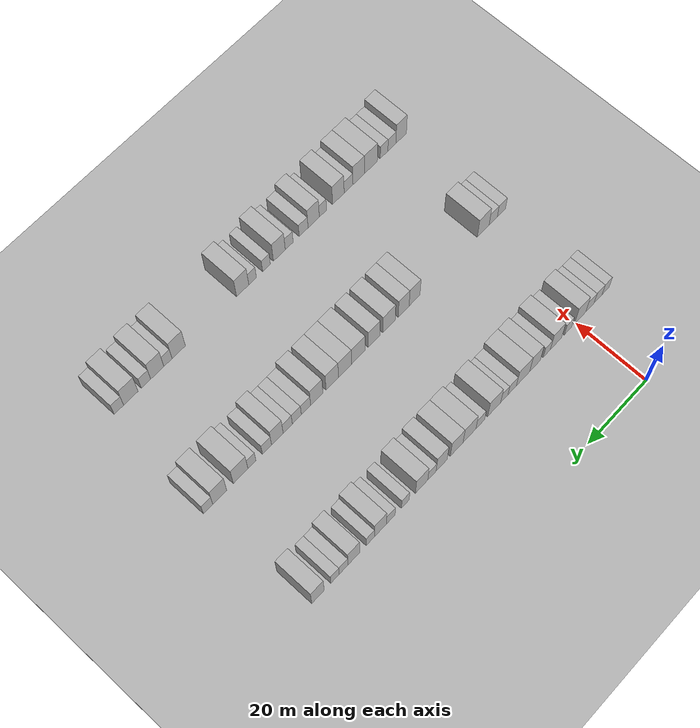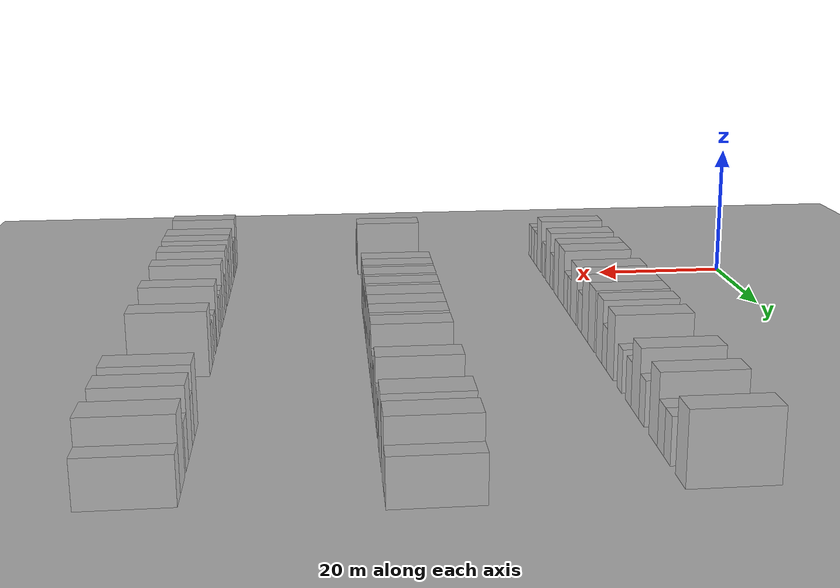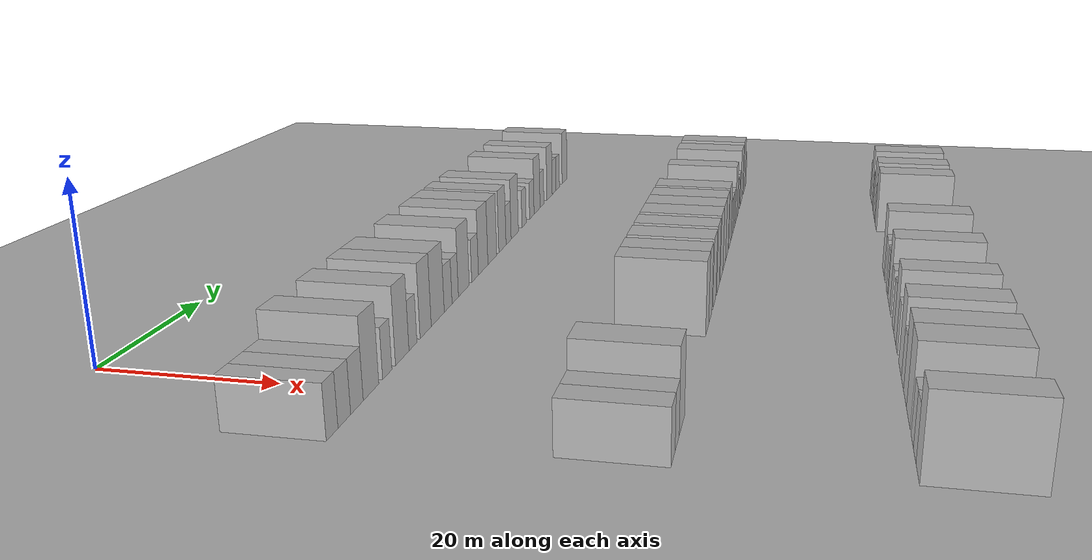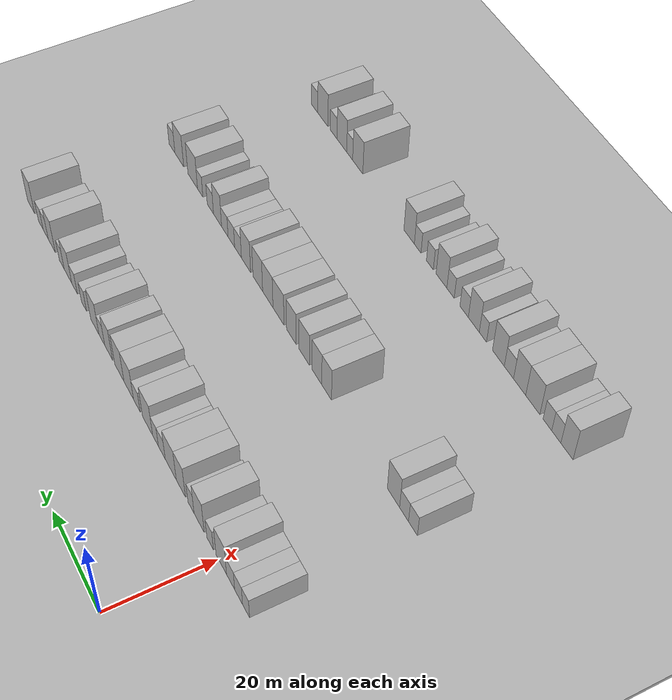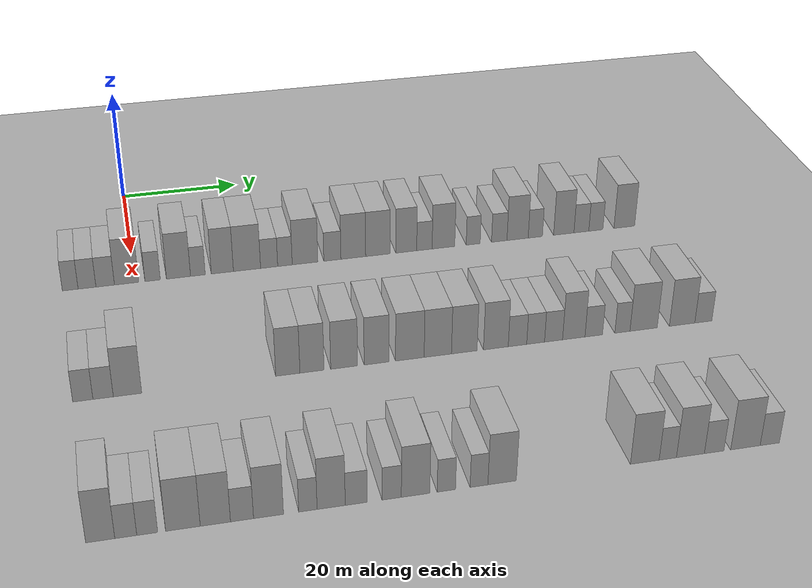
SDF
<sdf version="1.6">
 <world name="default">
  <include><name>ground_plane_1</name><uri>model://HANNAS_ground_plane</uri></include>
  <include>
   <name>ground_plane_2</name>
   <uri>model://HANNAS_ground_plane</uri>
   <pose>100 0 0  0 0 0</pose>
  </include>
  <model name="building_67">
   <static>1</static>
   <pose>25.0000 -10.3024 0 0.000000 0.000000 0.000000</pose>
   <link name="link">
    <pose>0 0 3.00 0 0 0</pose>
    <collision name="collision"><geometry><box><size>10.0000 2.5025 6.0000</size></box></geometry></collision>
    <visual name="visual">
     <cast_shadows>0</cast_shadows>
     <geometry><box><size>10.0000 2.5025 6.0000</size></box></geometry>
     <material>
      <script>
       <uri>model://HANNAS_wall/materials/scripts</uri>
       <uri>model://HANNAS_wall/materials/textures</uri>
       <name>vrc/HANNAS_wall</name>
      </script>
     </material>
    </visual>
   </link>
  </model>
  <model name="building_68">
   <static>1</static>
   <pose>25.0000 -7.6324 0 0.000000 0.000000 0.000000</pose>
   <link name="link">
    <pose>0 0 3.00 0 0 0</pose>
    <collision name="collision"><geometry><box><size>10.0000 2.8376 6.0000</size></box></geometry></collision>
    <visual name="visual">
     <cast_shadows>0</cast_shadows>
     <geometry><box><size>10.0000 2.8376 6.0000</size></box></geometry>
     <material>
      <script>
       <uri>model://HANNAS_wall/materials/scripts</uri>
       <uri>model://HANNAS_wall/materials/textures</uri>
       <name>vrc/HANNAS_wall</name>
      </script>
     </material>
    </visual>
   </link>
  </model>
  <model name="building_69">
   <static>1</static>
   <pose>25.0000 -4.7321 0 0.000000 0.000000 0.000000</pose>
   <link name="link">
    <pose>0 0 3.00 0 0 0</pose>
    <collision name="collision"><geometry><box><size>10.0000 2.9629 6.0000</size></box></geometry></collision>
    <visual name="visual">
     <cast_shadows>0</cast_shadows>
     <geometry><box><size>10.0000 2.9629 6.0000</size></box></geometry>
     <material>
      <script>
       <uri>model://HANNAS_wall/materials/scripts</uri>
       <uri>model://HANNAS_wall/materials/textures</uri>
       <name>vrc/HANNAS_wall</name>
      </script>
     </material>
    </visual>
   </link>
  </model>
  <model name="building_70">
   <static>1</static>
   <pose>25.0000 -1.3018 0 0.000000 0.000000 0.000000</pose>
   <link name="link">
    <pose>0 0 4.50 0 0 0</pose>
    <collision name="collision"><geometry><box><size>10.0000 3.8976 9.0000</size></box></geometry></collision>
    <visual name="visual">
     <cast_shadows>0</cast_shadows>
     <geometry><box><size>10.0000 3.8976 9.0000</size></box></geometry>
     <material>
      <script>
       <uri>model://HANNAS_wall/materials/scripts</uri>
       <uri>model://HANNAS_wall/materials/textures</uri>
       <name>vrc/HANNAS_wall</name>
      </script>
     </material>
    </visual>
   </link>
  </model>
  <model name="building_71">
   <static>1</static>
   <pose>25.0000 2.8912 0 0.000000 0.000000 0.000000</pose>
   <link name="link">
    <pose>0 0 3.00 0 0 0</pose>
    <collision name="collision"><geometry><box><size>10.0000 2.4885 6.0000</size></box></geometry></collision>
    <visual name="visual">
     <cast_shadows>0</cast_shadows>
     <geometry><box><size>10.0000 2.4885 6.0000</size></box></geometry>
     <material>
      <script>
       <uri>model://HANNAS_wall/materials/scripts</uri>
       <uri>model://HANNAS_wall/materials/textures</uri>
       <name>vrc/HANNAS_wall</name>
      </script>
     </material>
    </visual>
   </link>
  </model>
  <model name="building_72">
   <static>1</static>
   <pose>25.0000 7.0925 0 0.000000 0.000000 0.000000</pose>
   <link name="link">
    <pose>0 0 4.50 0 0 0</pose>
    <collision name="collision"><geometry><box><size>10.0000 3.9141 9.0000</size></box></geometry></collision>
    <visual name="visual">
     <cast_shadows>0</cast_shadows>
     <geometry><box><size>10.0000 3.9141 9.0000</size></box></geometry>
     <material>
      <script>
       <uri>model://HANNAS_wall/materials/scripts</uri>
       <uri>model://HANNAS_wall/materials/textures</uri>
       <name>vrc/HANNAS_wall</name>
      </script>
     </material>
    </visual>
   </link>
  </model>
  <model name="building_73">
   <static>1</static>
   <pose>25.0000 10.2542 0 0.000000 0.000000 0.000000</pose>
   <link name="link">
    <pose>0 0 3.00 0 0 0</pose>
    <collision name="collision"><geometry><box><size>10.0000 2.4094 6.0000</size></box></geometry></collision>
    <visual name="visual">
     <cast_shadows>0</cast_shadows>
     <geometry><box><size>10.0000 2.4094 6.0000</size></box></geometry>
     <material>
      <script>
       <uri>model://HANNAS_wall/materials/scripts</uri>
       <uri>model://HANNAS_wall/materials/textures</uri>
       <name>vrc/HANNAS_wall</name>
      </script>
     </material>
    </visual>
   </link>
  </model>
  <model name="building_74">
   <static>1</static>
   <pose>25.0000 14.2739 0 0.000000 0.000000 0.000000</pose>
   <link name="link">
    <pose>0 0 4.50 0 0 0</pose>
    <collision name="collision"><geometry><box><size>10.0000 3.6300 9.0000</size></box></geometry></collision>
    <visual name="visual">
     <cast_shadows>0</cast_shadows>
     <geometry><box><size>10.0000 3.6300 9.0000</size></box></geometry>
     <material>
      <script>
       <uri>model://HANNAS_wall/materials/scripts</uri>
       <uri>model://HANNAS_wall/materials/textures</uri>
       <name>vrc/HANNAS_wall</name>
      </script>
     </material>
    </visual>
   </link>
  </model>
  <model name="building_75">
   <static>1</static>
   <pose>25.0000 18.3363 0 0.000000 0.000000 0.000000</pose>
   <link name="link">
    <pose>0 0 4.50 0 0 0</pose>
    <collision name="collision"><geometry><box><size>10.0000 4.4947 9.0000</size></box></geometry></collision>
    <visual name="visual">
     <cast_shadows>0</cast_shadows>
     <geometry><box><size>10.0000 4.4947 9.0000</size></box></geometry>
     <material>
      <script>
       <uri>model://HANNAS_wall/materials/scripts</uri>
       <uri>model://HANNAS_wall/materials/textures</uri>
       <name>vrc/HANNAS_wall</name>
      </script>
     </material>
    </visual>
   </link>
  </model>
  <model name="building_76">
   <static>1</static>
   <pose>25.0000 22.0065 0 0.000000 0.000000 0.000000</pose>
   <link name="link">
    <pose>0 0 3.00 0 0 0</pose>
    <collision name="collision"><geometry><box><size>10.0000 2.8459 6.0000</size></box></geometry></collision>
    <visual name="visual">
     <cast_shadows>0</cast_shadows>
     <geometry><box><size>10.0000 2.8459 6.0000</size></box></geometry>
     <material>
      <script>
       <uri>model://HANNAS_wall/materials/scripts</uri>
       <uri>model://HANNAS_wall/materials/textures</uri>
       <name>vrc/HANNAS_wall</name>
      </script>
     </material>
    </visual>
   </link>
  </model>
  <model name="building_77">
   <static>1</static>
   <pose>25.0000 24.6432 0 0.000000 0.000000 0.000000</pose>
   <link name="link">
    <pose>0 0 3.00 0 0 0</pose>
    <collision name="collision"><geometry><box><size>10.0000 2.4274 6.0000</size></box></geometry></collision>
    <visual name="visual">
     <cast_shadows>0</cast_shadows>
     <geometry><box><size>10.0000 2.4274 6.0000</size></box></geometry>
     <material>
      <script>
       <uri>model://HANNAS_wall/materials/scripts</uri>
       <uri>model://HANNAS_wall/materials/textures</uri>
       <name>vrc/HANNAS_wall</name>
      </script>
     </material>
    </visual>
   </link>
  </model>
  <model name="building_78">
   <static>1</static>
   <pose>25.0000 28.0102 0 0.000000 0.000000 0.000000</pose>
   <link name="link">
    <pose>0 0 4.50 0 0 0</pose>
    <collision name="collision"><geometry><box><size>10.0000 4.3068 9.0000</size></box></geometry></collision>
    <visual name="visual">
     <cast_shadows>0</cast_shadows>
     <geometry><box><size>10.0000 4.3068 9.0000</size></box></geometry>
     <material>
      <script>
       <uri>model://HANNAS_wall/materials/scripts</uri>
       <uri>model://HANNAS_wall/materials/textures</uri>
       <name>vrc/HANNAS_wall</name>
      </script>
     </material>
    </visual>
   </link>
  </model>
  <model name="building_79">
   <static>1</static>
   <pose>25.0000 32.6095 0 0.000000 0.000000 0.000000</pose>
   <link name="link">
    <pose>0 0 3.00 0 0 0</pose>
    <collision name="collision"><geometry><box><size>10.0000 2.8917 6.0000</size></box></geometry></collision>
    <visual name="visual">
     <cast_shadows>0</cast_shadows>
     <geometry><box><size>10.0000 2.8917 6.0000</size></box></geometry>
     <material>
      <script>
       <uri>model://HANNAS_wall/materials/scripts</uri>
       <uri>model://HANNAS_wall/materials/textures</uri>
       <name>vrc/HANNAS_wall</name>
      </script>
     </material>
    </visual>
   </link>
  </model>
  <model name="building_80">
   <static>1</static>
   <pose>25.0000 36.1587 0 0.000000 0.000000 0.000000</pose>
   <link name="link">
    <pose>0 0 4.50 0 0 0</pose>
    <collision name="collision"><geometry><box><size>10.0000 4.2068 9.0000</size></box></geometry></collision>
    <visual name="visual">
     <cast_shadows>0</cast_shadows>
     <geometry><box><size>10.0000 4.2068 9.0000</size></box></geometry>
     <material>
      <script>
       <uri>model://HANNAS_wall/materials/scripts</uri>
       <uri>model://HANNAS_wall/materials/textures</uri>
       <name>vrc/HANNAS_wall</name>
      </script>
     </material>
    </visual>
   </link>
  </model>
  <model name="building_81">
   <static>1</static>
   <pose>25.0000 40.3358 0 0.000000 0.000000 0.000000</pose>
   <link name="link">
    <pose>0 0 4.50 0 0 0</pose>
    <collision name="collision"><geometry><box><size>10.0000 4.1473 9.0000</size></box></geometry></collision>
    <visual name="visual">
     <cast_shadows>0</cast_shadows>
     <geometry><box><size>10.0000 4.1473 9.0000</size></box></geometry>
     <material>
      <script>
       <uri>model://HANNAS_wall/materials/scripts</uri>
       <uri>model://HANNAS_wall/materials/textures</uri>
       <name>vrc/HANNAS_wall</name>
      </script>
     </material>
    </visual>
   </link>
  </model>
  <model name="building_82">
   <static>1</static>
   <pose>25.0000 45.2142 0 0.000000 0.000000 0.000000</pose>
   <link name="link">
    <pose>0 0 4.50 0 0 0</pose>
    <collision name="collision"><geometry><box><size>10.0000 3.6094 9.0000</size></box></geometry></collision>
    <visual name="visual">
     <cast_shadows>0</cast_shadows>
     <geometry><box><size>10.0000 3.6094 9.0000</size></box></geometry>
     <material>
      <script>
       <uri>model://HANNAS_wall/materials/scripts</uri>
       <uri>model://HANNAS_wall/materials/textures</uri>
       <name>vrc/HANNAS_wall</name>
      </script>
     </material>
    </visual>
   </link>
  </model>
  <model name="building_83">
   <static>1</static>
   <pose>25.0000 48.3505 0 0.000000 0.000000 0.000000</pose>
   <link name="link">
    <pose>0 0 3.00 0 0 0</pose>
    <collision name="collision"><geometry><box><size>10.0000 2.6633 6.0000</size></box></geometry></collision>
    <visual name="visual">
     <cast_shadows>0</cast_shadows>
     <geometry><box><size>10.0000 2.6633 6.0000</size></box></geometry>
     <material>
      <script>
       <uri>model://HANNAS_wall/materials/scripts</uri>
       <uri>model://HANNAS_wall/materials/textures</uri>
       <name>vrc/HANNAS_wall</name>
      </script>
     </material>
    </visual>
   </link>
  </model>
  <model name="building_84">
   <static>1</static>
   <pose>25.0000 51.6442 0 0.000000 0.000000 0.000000</pose>
   <link name="link">
    <pose>0 0 4.50 0 0 0</pose>
    <collision name="collision"><geometry><box><size>10.0000 3.9240 9.0000</size></box></geometry></collision>
    <visual name="visual">
     <cast_shadows>0</cast_shadows>
     <geometry><box><size>10.0000 3.9240 9.0000</size></box></geometry>
     <material>
      <script>
       <uri>model://HANNAS_wall/materials/scripts</uri>
       <uri>model://HANNAS_wall/materials/textures</uri>
       <name>vrc/HANNAS_wall</name>
      </script>
     </material>
    </visual>
   </link>
  </model>
  <model name="building_85">
   <static>1</static>
   <pose>25.0000 56.8289 0 0.000000 0.000000 0.000000</pose>
   <link name="link">
    <pose>0 0 3.00 0 0 0</pose>
    <collision name="collision"><geometry><box><size>10.0000 2.4454 6.0000</size></box></geometry></collision>
    <visual name="visual">
     <cast_shadows>0</cast_shadows>
     <geometry><box><size>10.0000 2.4454 6.0000</size></box></geometry>
     <material>
      <script>
       <uri>model://HANNAS_wall/materials/scripts</uri>
       <uri>model://HANNAS_wall/materials/textures</uri>
       <name>vrc/HANNAS_wall</name>
      </script>
     </material>
    </visual>
   </link>
  </model>
  <model name="building_86">
   <static>1</static>
   <pose>25.0000 61.4124 0 0.000000 0.000000 0.000000</pose>
   <link name="link">
    <pose>0 0 3.00 0 0 0</pose>
    <collision name="collision"><geometry><box><size>10.0000 2.7215 6.0000</size></box></geometry></collision>
    <visual name="visual">
     <cast_shadows>0</cast_shadows>
     <geometry><box><size>10.0000 2.7215 6.0000</size></box></geometry>
     <material>
      <script>
       <uri>model://HANNAS_wall/materials/scripts</uri>
       <uri>model://HANNAS_wall/materials/textures</uri>
       <name>vrc/HANNAS_wall</name>
      </script>
     </material>
    </visual>
   </link>
  </model>
  <model name="building_87">
   <static>1</static>
   <pose>25.0000 64.6516 0 0.000000 0.000000 0.000000</pose>
   <link name="link">
    <pose>0 0 4.50 0 0 0</pose>
    <collision name="collision"><geometry><box><size>10.0000 3.7570 9.0000</size></box></geometry></collision>
    <visual name="visual">
     <cast_shadows>0</cast_shadows>
     <geometry><box><size>10.0000 3.7570 9.0000</size></box></geometry>
     <material>
      <script>
       <uri>model://HANNAS_wall/materials/scripts</uri>
       <uri>model://HANNAS_wall/materials/textures</uri>
       <name>vrc/HANNAS_wall</name>
      </script>
     </material>
    </visual>
   </link>
  </model>
  <model name="building_88">
   <static>1</static>
   <pose>25.0000 67.7950 0 0.000000 0.000000 0.000000</pose>
   <link name="link">
    <pose>0 0 3.00 0 0 0</pose>
    <collision name="collision"><geometry><box><size>10.0000 2.5297 6.0000</size></box></geometry></collision>
    <visual name="visual">
     <cast_shadows>0</cast_shadows>
     <geometry><box><size>10.0000 2.5297 6.0000</size></box></geometry>
     <material>
      <script>
       <uri>model://HANNAS_wall/materials/scripts</uri>
       <uri>model://HANNAS_wall/materials/textures</uri>
       <name>vrc/HANNAS_wall</name>
      </script>
     </material>
    </visual>
   </link>
  </model>
  <model name="building_89">
   <static>1</static>
   <pose>25.0000 72.8808 0 0.000000 0.000000 0.000000</pose>
   <link name="link">
    <pose>0 0 4.50 0 0 0</pose>
    <collision name="collision"><geometry><box><size>10.0000 3.6419 9.0000</size></box></geometry></collision>
    <visual name="visual">
     <cast_shadows>0</cast_shadows>
     <geometry><box><size>10.0000 3.6419 9.0000</size></box></geometry>
     <material>
      <script>
       <uri>model://HANNAS_wall/materials/scripts</uri>
       <uri>model://HANNAS_wall/materials/textures</uri>
       <name>vrc/HANNAS_wall</name>
      </script>
     </material>
    </visual>
   </link>
  </model>
  <model name="building_90">
   <static>1</static>
   <pose>25.0000 76.0412 0 0.000000 0.000000 0.000000</pose>
   <link name="link">
    <pose>0 0 3.00 0 0 0</pose>
    <collision name="collision"><geometry><box><size>10.0000 2.6790 6.0000</size></box></geometry></collision>
    <visual name="visual">
     <cast_shadows>0</cast_shadows>
     <geometry><box><size>10.0000 2.6790 6.0000</size></box></geometry>
     <material>
      <script>
       <uri>model://HANNAS_wall/materials/scripts</uri>
       <uri>model://HANNAS_wall/materials/textures</uri>
       <name>vrc/HANNAS_wall</name>
      </script>
     </material>
    </visual>
   </link>
  </model>
  <model name="building_91">
   <static>1</static>
   <pose>25.0000 78.6515 0 0.000000 0.000000 0.000000</pose>
   <link name="link">
    <pose>0 0 3.00 0 0 0</pose>
    <collision name="collision"><geometry><box><size>10.0000 2.5416 6.0000</size></box></geometry></collision>
    <visual name="visual">
     <cast_shadows>0</cast_shadows>
     <geometry><box><size>10.0000 2.5416 6.0000</size></box></geometry>
     <material>
      <script>
       <uri>model://HANNAS_wall/materials/scripts</uri>
       <uri>model://HANNAS_wall/materials/textures</uri>
       <name>vrc/HANNAS_wall</name>
      </script>
     </material>
    </visual>
   </link>
  </model>
  <model name="building_92">
   <static>1</static>
   <pose>25.0000 83.8057 0 0.000000 0.000000 0.000000</pose>
   <link name="link">
    <pose>0 0 4.50 0 0 0</pose>
    <collision name="collision"><geometry><box><size>10.0000 3.7669 9.0000</size></box></geometry></collision>
    <visual name="visual">
     <cast_shadows>0</cast_shadows>
     <geometry><box><size>10.0000 3.7669 9.0000</size></box></geometry>
     <material>
      <script>
       <uri>model://HANNAS_wall/materials/scripts</uri>
       <uri>model://HANNAS_wall/materials/textures</uri>
       <name>vrc/HANNAS_wall</name>
      </script>
     </material>
    </visual>
   </link>
  </model>
  <model name="building_206">
   <static>1</static>
   <pose>55.0000 -9.4039 0 0.000000 0.000000 0.000000</pose>
   <link name="link">
    <pose>0 0 3.00 0 0 0</pose>
    <collision name="collision"><geometry><box><size>10.0000 2.8705 6.0000</size></box></geometry></collision>
    <visual name="visual">
     <cast_shadows>0</cast_shadows>
     <geometry><box><size>10.0000 2.8705 6.0000</size></box></geometry>
     <material>
      <script>
       <uri>model://HANNAS_wall/materials/scripts</uri>
       <uri>model://HANNAS_wall/materials/textures</uri>
       <name>vrc/HANNAS_wall</name>
      </script>
     </material>
    </visual>
   </link>
  </model>
  <model name="building_207">
   <static>1</static>
   <pose>55.0000 -6.5128 0 0.000000 0.000000 0.000000</pose>
   <link name="link">
    <pose>0 0 3.00 0 0 0</pose>
    <collision name="collision"><geometry><box><size>10.0000 2.9117 6.0000</size></box></geometry></collision>
    <visual name="visual">
     <cast_shadows>0</cast_shadows>
     <geometry><box><size>10.0000 2.9117 6.0000</size></box></geometry>
     <material>
      <script>
       <uri>model://HANNAS_wall/materials/scripts</uri>
       <uri>model://HANNAS_wall/materials/textures</uri>
       <name>vrc/HANNAS_wall</name>
      </script>
     </material>
    </visual>
   </link>
  </model>
  <model name="building_208">
   <static>1</static>
   <pose>55.0000 -3.0163 0 0.000000 0.000000 0.000000</pose>
   <link name="link">
    <pose>0 0 4.50 0 0 0</pose>
    <collision name="collision"><geometry><box><size>10.0000 4.0813 9.0000</size></box></geometry></collision>
    <visual name="visual">
     <cast_shadows>0</cast_shadows>
     <geometry><box><size>10.0000 4.0813 9.0000</size></box></geometry>
     <material>
      <script>
       <uri>model://HANNAS_wall/materials/scripts</uri>
       <uri>model://HANNAS_wall/materials/textures</uri>
       <name>vrc/HANNAS_wall</name>
      </script>
     </material>
    </visual>
   </link>
  </model>
  <model name="building_209">
   <static>1</static>
   <pose>55.0000 20.4565 0 0.000000 0.000000 0.000000</pose>
   <link name="link">
    <pose>0 0 4.50 0 0 0</pose>
    <collision name="collision"><geometry><box><size>10.0000 3.6215 9.0000</size></box></geometry></collision>
    <visual name="visual">
     <cast_shadows>0</cast_shadows>
     <geometry><box><size>10.0000 3.6215 9.0000</size></box></geometry>
     <material>
      <script>
       <uri>model://HANNAS_wall/materials/scripts</uri>
       <uri>model://HANNAS_wall/materials/textures</uri>
       <name>vrc/HANNAS_wall</name>
      </script>
     </material>
    </visual>
   </link>
  </model>
  <model name="building_210">
   <static>1</static>
   <pose>55.0000 24.0780 0 0.000000 0.000000 0.000000</pose>
   <link name="link">
    <pose>0 0 4.50 0 0 0</pose>
    <collision name="collision"><geometry><box><size>10.0000 3.6215 9.0000</size></box></geometry></collision>
    <visual name="visual">
     <cast_shadows>0</cast_shadows>
     <geometry><box><size>10.0000 3.6215 9.0000</size></box></geometry>
     <material>
      <script>
       <uri>model://HANNAS_wall/materials/scripts</uri>
       <uri>model://HANNAS_wall/materials/textures</uri>
       <name>vrc/HANNAS_wall</name>
      </script>
     </material>
    </visual>
   </link>
  </model>
  <model name="building_211">
   <static>1</static>
   <pose>55.0000 28.9229 0 0.000000 0.000000 0.000000</pose>
   <link name="link">
    <pose>0 0 4.50 0 0 0</pose>
    <collision name="collision"><geometry><box><size>10.0000 4.0684 9.0000</size></box></geometry></collision>
    <visual name="visual">
     <cast_shadows>0</cast_shadows>
     <geometry><box><size>10.0000 4.0684 9.0000</size></box></geometry>
     <material>
      <script>
       <uri>model://HANNAS_wall/materials/scripts</uri>
       <uri>model://HANNAS_wall/materials/textures</uri>
       <name>vrc/HANNAS_wall</name>
      </script>
     </material>
    </visual>
   </link>
  </model>
  <model name="building_212">
   <static>1</static>
   <pose>55.0000 33.8554 0 0.000000 0.000000 0.000000</pose>
   <link name="link">
    <pose>0 0 4.50 0 0 0</pose>
    <collision name="collision"><geometry><box><size>10.0000 3.7966 9.0000</size></box></geometry></collision>
    <visual name="visual">
     <cast_shadows>0</cast_shadows>
     <geometry><box><size>10.0000 3.7966 9.0000</size></box></geometry>
     <material>
      <script>
       <uri>model://HANNAS_wall/materials/scripts</uri>
       <uri>model://HANNAS_wall/materials/textures</uri>
       <name>vrc/HANNAS_wall</name>
      </script>
     </material>
    </visual>
   </link>
  </model>
  <model name="building_213">
   <static>1</static>
   <pose>55.0000 38.9589 0 0.000000 0.000000 0.000000</pose>
   <link name="link">
    <pose>0 0 4.50 0 0 0</pose>
    <collision name="collision"><geometry><box><size>10.0000 4.4105 9.0000</size></box></geometry></collision>
    <visual name="visual">
     <cast_shadows>0</cast_shadows>
     <geometry><box><size>10.0000 4.4105 9.0000</size></box></geometry>
     <material>
      <script>
       <uri>model://HANNAS_wall/materials/scripts</uri>
       <uri>model://HANNAS_wall/materials/textures</uri>
       <name>vrc/HANNAS_wall</name>
      </script>
     </material>
    </visual>
   </link>
  </model>
  <model name="building_214">
   <static>1</static>
   <pose>55.0000 43.2803 0 0.000000 0.000000 0.000000</pose>
   <link name="link">
    <pose>0 0 4.50 0 0 0</pose>
    <collision name="collision"><geometry><box><size>10.0000 4.2322 9.0000</size></box></geometry></collision>
    <visual name="visual">
     <cast_shadows>0</cast_shadows>
     <geometry><box><size>10.0000 4.2322 9.0000</size></box></geometry>
     <material>
      <script>
       <uri>model://HANNAS_wall/materials/scripts</uri>
       <uri>model://HANNAS_wall/materials/textures</uri>
       <name>vrc/HANNAS_wall</name>
      </script>
     </material>
    </visual>
   </link>
  </model>
  <model name="building_215">
   <static>1</static>
   <pose>55.0000 47.3942 0 0.000000 0.000000 0.000000</pose>
   <link name="link">
    <pose>0 0 4.50 0 0 0</pose>
    <collision name="collision"><geometry><box><size>10.0000 3.9956 9.0000</size></box></geometry></collision>
    <visual name="visual">
     <cast_shadows>0</cast_shadows>
     <geometry><box><size>10.0000 3.9956 9.0000</size></box></geometry>
     <material>
      <script>
       <uri>model://HANNAS_wall/materials/scripts</uri>
       <uri>model://HANNAS_wall/materials/textures</uri>
       <name>vrc/HANNAS_wall</name>
      </script>
     </material>
    </visual>
   </link>
  </model>
  <model name="building_216">
   <static>1</static>
   <pose>55.0000 52.3435 0 0.000000 0.000000 0.000000</pose>
   <link name="link">
    <pose>0 0 4.50 0 0 0</pose>
    <collision name="collision"><geometry><box><size>10.0000 3.9031 9.0000</size></box></geometry></collision>
    <visual name="visual">
     <cast_shadows>0</cast_shadows>
     <geometry><box><size>10.0000 3.9031 9.0000</size></box></geometry>
     <material>
      <script>
       <uri>model://HANNAS_wall/materials/scripts</uri>
       <uri>model://HANNAS_wall/materials/textures</uri>
       <name>vrc/HANNAS_wall</name>
      </script>
     </material>
    </visual>
   </link>
  </model>
  <model name="building_217">
   <static>1</static>
   <pose>55.0000 55.7551 0 0.000000 0.000000 0.000000</pose>
   <link name="link">
    <pose>0 0 3.00 0 0 0</pose>
    <collision name="collision"><geometry><box><size>10.0000 2.9200 6.0000</size></box></geometry></collision>
    <visual name="visual">
     <cast_shadows>0</cast_shadows>
     <geometry><box><size>10.0000 2.9200 6.0000</size></box></geometry>
     <material>
      <script>
       <uri>model://HANNAS_wall/materials/scripts</uri>
       <uri>model://HANNAS_wall/materials/textures</uri>
       <name>vrc/HANNAS_wall</name>
      </script>
     </material>
    </visual>
   </link>
  </model>
  <model name="building_218">
   <static>1</static>
   <pose>55.0000 58.6316 0 0.000000 0.000000 0.000000</pose>
   <link name="link">
    <pose>0 0 3.00 0 0 0</pose>
    <collision name="collision"><geometry><box><size>10.0000 2.8330 6.0000</size></box></geometry></collision>
    <visual name="visual">
     <cast_shadows>0</cast_shadows>
     <geometry><box><size>10.0000 2.8330 6.0000</size></box></geometry>
     <material>
      <script>
       <uri>model://HANNAS_wall/materials/scripts</uri>
       <uri>model://HANNAS_wall/materials/textures</uri>
       <name>vrc/HANNAS_wall</name>
      </script>
     </material>
    </visual>
   </link>
  </model>
  <model name="building_219">
   <static>1</static>
   <pose>55.0000 61.4864 0 0.000000 0.000000 0.000000</pose>
   <link name="link">
    <pose>0 0 3.00 0 0 0</pose>
    <collision name="collision"><geometry><box><size>10.0000 2.8766 6.0000</size></box></geometry></collision>
    <visual name="visual">
     <cast_shadows>0</cast_shadows>
     <geometry><box><size>10.0000 2.8766 6.0000</size></box></geometry>
     <material>
      <script>
       <uri>model://HANNAS_wall/materials/scripts</uri>
       <uri>model://HANNAS_wall/materials/textures</uri>
       <name>vrc/HANNAS_wall</name>
      </script>
     </material>
    </visual>
   </link>
  </model>
  <model name="building_220">
   <static>1</static>
   <pose>55.0000 64.7248 0 0.000000 0.000000 0.000000</pose>
   <link name="link">
    <pose>0 0 4.50 0 0 0</pose>
    <collision name="collision"><geometry><box><size>10.0000 3.6002 9.0000</size></box></geometry></collision>
    <visual name="visual">
     <cast_shadows>0</cast_shadows>
     <geometry><box><size>10.0000 3.6002 9.0000</size></box></geometry>
     <material>
      <script>
       <uri>model://HANNAS_wall/materials/scripts</uri>
       <uri>model://HANNAS_wall/materials/textures</uri>
       <name>vrc/HANNAS_wall</name>
      </script>
     </material>
    </visual>
   </link>
  </model>
  <model name="building_221">
   <static>1</static>
   <pose>55.0000 67.9370 0 0.000000 0.000000 0.000000</pose>
   <link name="link">
    <pose>0 0 3.00 0 0 0</pose>
    <collision name="collision"><geometry><box><size>10.0000 2.8242 6.0000</size></box></geometry></collision>
    <visual name="visual">
     <cast_shadows>0</cast_shadows>
     <geometry><box><size>10.0000 2.8242 6.0000</size></box></geometry>
     <material>
      <script>
       <uri>model://HANNAS_wall/materials/scripts</uri>
       <uri>model://HANNAS_wall/materials/textures</uri>
       <name>vrc/HANNAS_wall</name>
      </script>
     </material>
    </visual>
   </link>
  </model>
  <model name="building_222">
   <static>1</static>
   <pose>55.0000 72.5771 0 0.000000 0.000000 0.000000</pose>
   <link name="link">
    <pose>0 0 3.00 0 0 0</pose>
    <collision name="collision"><geometry><box><size>10.0000 2.4559 6.0000</size></box></geometry></collision>
    <visual name="visual">
     <cast_shadows>0</cast_shadows>
     <geometry><box><size>10.0000 2.4559 6.0000</size></box></geometry>
     <material>
      <script>
       <uri>model://HANNAS_wall/materials/scripts</uri>
       <uri>model://HANNAS_wall/materials/textures</uri>
       <name>vrc/HANNAS_wall</name>
      </script>
     </material>
    </visual>
   </link>
  </model>
  <model name="building_223">
   <static>1</static>
   <pose>55.0000 76.0334 0 0.000000 0.000000 0.000000</pose>
   <link name="link">
    <pose>0 0 4.50 0 0 0</pose>
    <collision name="collision"><geometry><box><size>10.0000 4.4567 9.0000</size></box></geometry></collision>
    <visual name="visual">
     <cast_shadows>0</cast_shadows>
     <geometry><box><size>10.0000 4.4567 9.0000</size></box></geometry>
     <material>
      <script>
       <uri>model://HANNAS_wall/materials/scripts</uri>
       <uri>model://HANNAS_wall/materials/textures</uri>
       <name>vrc/HANNAS_wall</name>
      </script>
     </material>
    </visual>
   </link>
  </model>
  <model name="building_224">
   <static>1</static>
   <pose>55.0000 82.3613 0 0.000000 0.000000 0.000000</pose>
   <link name="link">
    <pose>0 0 4.50 0 0 0</pose>
    <collision name="collision"><geometry><box><size>10.0000 4.1991 9.0000</size></box></geometry></collision>
    <visual name="visual">
     <cast_shadows>0</cast_shadows>
     <geometry><box><size>10.0000 4.1991 9.0000</size></box></geometry>
     <material>
      <script>
       <uri>model://HANNAS_wall/materials/scripts</uri>
       <uri>model://HANNAS_wall/materials/textures</uri>
       <name>vrc/HANNAS_wall</name>
      </script>
     </material>
    </visual>
   </link>
  </model>
  <model name="building_225">
   <static>1</static>
   <pose>55.0000 85.8736 0 0.000000 0.000000 0.000000</pose>
   <link name="link">
    <pose>0 0 3.00 0 0 0</pose>
    <collision name="collision"><geometry><box><size>10.0000 2.8254 6.0000</size></box></geometry></collision>
    <visual name="visual">
     <cast_shadows>0</cast_shadows>
     <geometry><box><size>10.0000 2.8254 6.0000</size></box></geometry>
     <material>
      <script>
       <uri>model://HANNAS_wall/materials/scripts</uri>
       <uri>model://HANNAS_wall/materials/textures</uri>
       <name>vrc/HANNAS_wall</name>
      </script>
     </material>
    </visual>
   </link>
  </model>
  <model name="building_340">
   <static>1</static>
   <pose>85.0000 -8.3257 0 0.000000 0.000000 0.000000</pose>
   <link name="link">
    <pose>0 0 4.50 0 0 0</pose>
    <collision name="collision"><geometry><box><size>10.0000 3.6635 9.0000</size></box></geometry></collision>
    <visual name="visual">
     <cast_shadows>0</cast_shadows>
     <geometry><box><size>10.0000 3.6635 9.0000</size></box></geometry>
     <material>
      <script>
       <uri>model://HANNAS_wall/materials/scripts</uri>
       <uri>model://HANNAS_wall/materials/textures</uri>
       <name>vrc/HANNAS_wall</name>
      </script>
     </material>
    </visual>
   </link>
  </model>
  <model name="building_341">
   <static>1</static>
   <pose>85.0000 -5.1028 0 0.000000 0.000000 0.000000</pose>
   <link name="link">
    <pose>0 0 3.00 0 0 0</pose>
    <collision name="collision"><geometry><box><size>10.0000 2.7823 6.0000</size></box></geometry></collision>
    <visual name="visual">
     <cast_shadows>0</cast_shadows>
     <geometry><box><size>10.0000 2.7823 6.0000</size></box></geometry>
     <material>
      <script>
       <uri>model://HANNAS_wall/materials/scripts</uri>
       <uri>model://HANNAS_wall/materials/textures</uri>
       <name>vrc/HANNAS_wall</name>
      </script>
     </material>
    </visual>
   </link>
  </model>
  <model name="building_342">
   <static>1</static>
   <pose>85.0000 -2.3815 0 0.000000 0.000000 0.000000</pose>
   <link name="link">
    <pose>0 0 3.00 0 0 0</pose>
    <collision name="collision"><geometry><box><size>10.0000 2.6604 6.0000</size></box></geometry></collision>
    <visual name="visual">
     <cast_shadows>0</cast_shadows>
     <geometry><box><size>10.0000 2.6604 6.0000</size></box></geometry>
     <material>
      <script>
       <uri>model://HANNAS_wall/materials/scripts</uri>
       <uri>model://HANNAS_wall/materials/textures</uri>
       <name>vrc/HANNAS_wall</name>
      </script>
     </material>
    </visual>
   </link>
  </model>
  <model name="building_343">
   <static>1</static>
   <pose>85.0000 2.1722 0 0.000000 0.000000 0.000000</pose>
   <link name="link">
    <pose>0 0 4.50 0 0 0</pose>
    <collision name="collision"><geometry><box><size>10.0000 4.4470 9.0000</size></box></geometry></collision>
    <visual name="visual">
     <cast_shadows>0</cast_shadows>
     <geometry><box><size>10.0000 4.4470 9.0000</size></box></geometry>
     <material>
      <script>
       <uri>model://HANNAS_wall/materials/scripts</uri>
       <uri>model://HANNAS_wall/materials/textures</uri>
       <name>vrc/HANNAS_wall</name>
      </script>
     </material>
    </visual>
   </link>
  </model>
  <model name="building_344">
   <static>1</static>
   <pose>85.0000 6.3492 0 0.000000 0.000000 0.000000</pose>
   <link name="link">
    <pose>0 0 4.50 0 0 0</pose>
    <collision name="collision"><geometry><box><size>10.0000 3.9069 9.0000</size></box></geometry></collision>
    <visual name="visual">
     <cast_shadows>0</cast_shadows>
     <geometry><box><size>10.0000 3.9069 9.0000</size></box></geometry>
     <material>
      <script>
       <uri>model://HANNAS_wall/materials/scripts</uri>
       <uri>model://HANNAS_wall/materials/textures</uri>
       <name>vrc/HANNAS_wall</name>
      </script>
     </material>
    </visual>
   </link>
  </model>
  <model name="building_345">
   <static>1</static>
   <pose>85.0000 9.7999 0 0.000000 0.000000 0.000000</pose>
   <link name="link">
    <pose>0 0 3.00 0 0 0</pose>
    <collision name="collision"><geometry><box><size>10.0000 2.9946 6.0000</size></box></geometry></collision>
    <visual name="visual">
     <cast_shadows>0</cast_shadows>
     <geometry><box><size>10.0000 2.9946 6.0000</size></box></geometry>
     <material>
      <script>
       <uri>model://HANNAS_wall/materials/scripts</uri>
       <uri>model://HANNAS_wall/materials/textures</uri>
       <name>vrc/HANNAS_wall</name>
      </script>
     </material>
    </visual>
   </link>
  </model>
  <model name="building_346">
   <static>1</static>
   <pose>85.0000 13.2584 0 0.000000 0.000000 0.000000</pose>
   <link name="link">
    <pose>0 0 4.50 0 0 0</pose>
    <collision name="collision"><geometry><box><size>10.0000 3.9223 9.0000</size></box></geometry></collision>
    <visual name="visual">
     <cast_shadows>0</cast_shadows>
     <geometry><box><size>10.0000 3.9223 9.0000</size></box></geometry>
     <material>
      <script>
       <uri>model://HANNAS_wall/materials/scripts</uri>
       <uri>model://HANNAS_wall/materials/textures</uri>
       <name>vrc/HANNAS_wall</name>
      </script>
     </material>
    </visual>
   </link>
  </model>
  <model name="building_347">
   <static>1</static>
   <pose>85.0000 18.4353 0 0.000000 0.000000 0.000000</pose>
   <link name="link">
    <pose>0 0 3.00 0 0 0</pose>
    <collision name="collision"><geometry><box><size>10.0000 2.4315 6.0000</size></box></geometry></collision>
    <visual name="visual">
     <cast_shadows>0</cast_shadows>
     <geometry><box><size>10.0000 2.4315 6.0000</size></box></geometry>
     <material>
      <script>
       <uri>model://HANNAS_wall/materials/scripts</uri>
       <uri>model://HANNAS_wall/materials/textures</uri>
       <name>vrc/HANNAS_wall</name>
      </script>
     </material>
    </visual>
   </link>
  </model>
  <model name="building_348">
   <static>1</static>
   <pose>85.0000 21.5222 0 0.000000 0.000000 0.000000</pose>
   <link name="link">
    <pose>0 0 4.50 0 0 0</pose>
    <collision name="collision"><geometry><box><size>10.0000 3.7424 9.0000</size></box></geometry></collision>
    <visual name="visual">
     <cast_shadows>0</cast_shadows>
     <geometry><box><size>10.0000 3.7424 9.0000</size></box></geometry>
     <material>
      <script>
       <uri>model://HANNAS_wall/materials/scripts</uri>
       <uri>model://HANNAS_wall/materials/textures</uri>
       <name>vrc/HANNAS_wall</name>
      </script>
     </material>
    </visual>
   </link>
  </model>
  <model name="building_349">
   <static>1</static>
   <pose>85.0000 24.8565 0 0.000000 0.000000 0.000000</pose>
   <link name="link">
    <pose>0 0 3.00 0 0 0</pose>
    <collision name="collision"><geometry><box><size>10.0000 2.9261 6.0000</size></box></geometry></collision>
    <visual name="visual">
     <cast_shadows>0</cast_shadows>
     <geometry><box><size>10.0000 2.9261 6.0000</size></box></geometry>
     <material>
      <script>
       <uri>model://HANNAS_wall/materials/scripts</uri>
       <uri>model://HANNAS_wall/materials/textures</uri>
       <name>vrc/HANNAS_wall</name>
      </script>
     </material>
    </visual>
   </link>
  </model>
  <model name="building_350">
   <static>1</static>
   <pose>85.0000 29.6215 0 0.000000 0.000000 0.000000</pose>
   <link name="link">
    <pose>0 0 3.00 0 0 0</pose>
    <collision name="collision"><geometry><box><size>10.0000 2.6039 6.0000</size></box></geometry></collision>
    <visual name="visual">
     <cast_shadows>0</cast_shadows>
     <geometry><box><size>10.0000 2.6039 6.0000</size></box></geometry>
     <material>
      <script>
       <uri>model://HANNAS_wall/materials/scripts</uri>
       <uri>model://HANNAS_wall/materials/textures</uri>
       <name>vrc/HANNAS_wall</name>
      </script>
     </material>
    </visual>
   </link>
  </model>
  <model name="building_351">
   <static>1</static>
   <pose>85.0000 32.8580 0 0.000000 0.000000 0.000000</pose>
   <link name="link">
    <pose>0 0 4.50 0 0 0</pose>
    <collision name="collision"><geometry><box><size>10.0000 3.8691 9.0000</size></box></geometry></collision>
    <visual name="visual">
     <cast_shadows>0</cast_shadows>
     <geometry><box><size>10.0000 3.8691 9.0000</size></box></geometry>
     <material>
      <script>
       <uri>model://HANNAS_wall/materials/scripts</uri>
       <uri>model://HANNAS_wall/materials/textures</uri>
       <name>vrc/HANNAS_wall</name>
      </script>
     </material>
    </visual>
   </link>
  </model>
  <model name="building_352">
   <static>1</static>
   <pose>85.0000 37.0485 0 0.000000 0.000000 0.000000</pose>
   <link name="link">
    <pose>0 0 3.00 0 0 0</pose>
    <collision name="collision"><geometry><box><size>10.0000 2.5119 6.0000</size></box></geometry></collision>
    <visual name="visual">
     <cast_shadows>0</cast_shadows>
     <geometry><box><size>10.0000 2.5119 6.0000</size></box></geometry>
     <material>
      <script>
       <uri>model://HANNAS_wall/materials/scripts</uri>
       <uri>model://HANNAS_wall/materials/textures</uri>
       <name>vrc/HANNAS_wall</name>
      </script>
     </material>
    </visual>
   </link>
  </model>
  <model name="building_353">
   <static>1</static>
   <pose>85.0000 41.5349 0 0.000000 0.000000 0.000000</pose>
   <link name="link">
    <pose>0 0 3.00 0 0 0</pose>
    <collision name="collision"><geometry><box><size>10.0000 2.4608 6.0000</size></box></geometry></collision>
    <visual name="visual">
     <cast_shadows>0</cast_shadows>
     <geometry><box><size>10.0000 2.4608 6.0000</size></box></geometry>
     <material>
      <script>
       <uri>model://HANNAS_wall/materials/scripts</uri>
       <uri>model://HANNAS_wall/materials/textures</uri>
       <name>vrc/HANNAS_wall</name>
      </script>
     </material>
    </visual>
   </link>
  </model>
  <model name="building_354">
   <static>1</static>
   <pose>85.0000 44.7352 0 0.000000 0.000000 0.000000</pose>
   <link name="link">
    <pose>0 0 4.50 0 0 0</pose>
    <collision name="collision"><geometry><box><size>10.0000 3.9399 9.0000</size></box></geometry></collision>
    <visual name="visual">
     <cast_shadows>0</cast_shadows>
     <geometry><box><size>10.0000 3.9399 9.0000</size></box></geometry>
     <material>
      <script>
       <uri>model://HANNAS_wall/materials/scripts</uri>
       <uri>model://HANNAS_wall/materials/textures</uri>
       <name>vrc/HANNAS_wall</name>
      </script>
     </material>
    </visual>
   </link>
  </model>
  <model name="building_355">
   <static>1</static>
   <pose>85.0000 64.9137 0 0.000000 0.000000 0.000000</pose>
   <link name="link">
    <pose>0 0 4.50 0 0 0</pose>
    <collision name="collision"><geometry><box><size>10.0000 4.1390 9.0000</size></box></geometry></collision>
    <visual name="visual">
     <cast_shadows>0</cast_shadows>
     <geometry><box><size>10.0000 4.1390 9.0000</size></box></geometry>
     <material>
      <script>
       <uri>model://HANNAS_wall/materials/scripts</uri>
       <uri>model://HANNAS_wall/materials/textures</uri>
       <name>vrc/HANNAS_wall</name>
      </script>
     </material>
    </visual>
   </link>
  </model>
  <model name="building_356">
   <static>1</static>
   <pose>85.0000 68.2349 0 0.000000 0.000000 0.000000</pose>
   <link name="link">
    <pose>0 0 3.00 0 0 0</pose>
    <collision name="collision"><geometry><box><size>10.0000 2.5035 6.0000</size></box></geometry></collision>
    <visual name="visual">
     <cast_shadows>0</cast_shadows>
     <geometry><box><size>10.0000 2.5035 6.0000</size></box></geometry>
     <material>
      <script>
       <uri>model://HANNAS_wall/materials/scripts</uri>
       <uri>model://HANNAS_wall/materials/textures</uri>
       <name>vrc/HANNAS_wall</name>
      </script>
     </material>
    </visual>
   </link>
  </model>
  <model name="building_357">
   <static>1</static>
   <pose>85.0000 71.5217 0 0.000000 0.000000 0.000000</pose>
   <link name="link">
    <pose>0 0 4.50 0 0 0</pose>
    <collision name="collision"><geometry><box><size>10.0000 4.0701 9.0000</size></box></geometry></collision>
    <visual name="visual">
     <cast_shadows>0</cast_shadows>
     <geometry><box><size>10.0000 4.0701 9.0000</size></box></geometry>
     <material>
      <script>
       <uri>model://HANNAS_wall/materials/scripts</uri>
       <uri>model://HANNAS_wall/materials/textures</uri>
       <name>vrc/HANNAS_wall</name>
      </script>
     </material>
    </visual>
   </link>
  </model>
  <model name="building_358">
   <static>1</static>
   <pose>85.0000 74.9839 0 0.000000 0.000000 0.000000</pose>
   <link name="link">
    <pose>0 0 3.00 0 0 0</pose>
    <collision name="collision"><geometry><box><size>10.0000 2.8543 6.0000</size></box></geometry></collision>
    <visual name="visual">
     <cast_shadows>0</cast_shadows>
     <geometry><box><size>10.0000 2.8543 6.0000</size></box></geometry>
     <material>
      <script>
       <uri>model://HANNAS_wall/materials/scripts</uri>
       <uri>model://HANNAS_wall/materials/textures</uri>
       <name>vrc/HANNAS_wall</name>
      </script>
     </material>
    </visual>
   </link>
  </model>
  <model name="building_359">
   <static>1</static>
   <pose>85.0000 79.5891 0 0.000000 0.000000 0.000000</pose>
   <link name="link">
    <pose>0 0 4.50 0 0 0</pose>
    <collision name="collision"><geometry><box><size>10.0000 4.3561 9.0000</size></box></geometry></collision>
    <visual name="visual">
     <cast_shadows>0</cast_shadows>
     <geometry><box><size>10.0000 4.3561 9.0000</size></box></geometry>
     <material>
      <script>
       <uri>model://HANNAS_wall/materials/scripts</uri>
       <uri>model://HANNAS_wall/materials/textures</uri>
       <name>vrc/HANNAS_wall</name>
      </script>
     </material>
    </visual>
   </link>
  </model>
  <model name="building_360">
   <static>1</static>
   <pose>85.0000 83.1946 0 0.000000 0.000000 0.000000</pose>
   <link name="link">
    <pose>0 0 3.00 0 0 0</pose>
    <collision name="collision"><geometry><box><size>10.0000 2.8548 6.0000</size></box></geometry></collision>
    <visual name="visual">
     <cast_shadows>0</cast_shadows>
     <geometry><box><size>10.0000 2.8548 6.0000</size></box></geometry>
     <material>
      <script>
       <uri>model://HANNAS_wall/materials/scripts</uri>
       <uri>model://HANNAS_wall/materials/textures</uri>
       <name>vrc/HANNAS_wall</name>
      </script>
     </material>
    </visual>
   </link>
  </model>
 </world>
</sdf>
